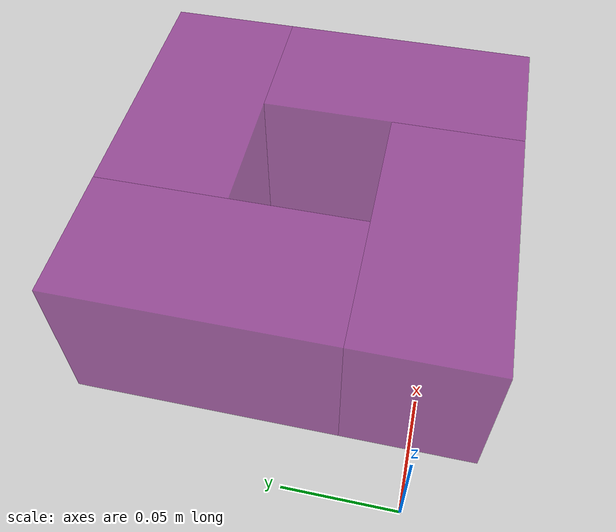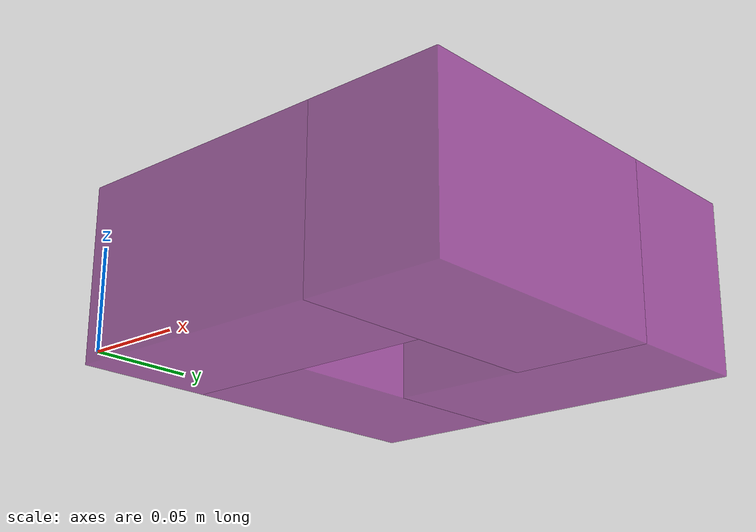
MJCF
<mujoco model="target_box">
    <worldbody>
        <body name="target_box" pos="0.0 0.0 0.0" quat="1 0 0 0">
        <geom name="target_box0" pos="0.1 0.0 0.02" size="0.064 0.032 0.04" rgba="0.5 0.0 0.5 0.6" type="box" mass="0.01" />
        <geom name="target_box1" pos="0.068 0.096 0.02" size="0.032 0.064 0.04" rgba="0.5 0.0 0.5 0.6" type="box" mass="0.01" />
        <geom name="target_box2" pos="0.196 0.032  0.02" size="0.032 0.064 0.04" rgba="0.5 0.0 0.5 0.6" type="box" mass="0.01" />
        <geom name="target_box3" pos="0.164 0.128 0.02" size="0.064 0.032 0.04" rgba="0.5 0.0 0.5 0.6" type="box" mass="0.01" />
        </body>
    </worldbody>
</mujoco>
